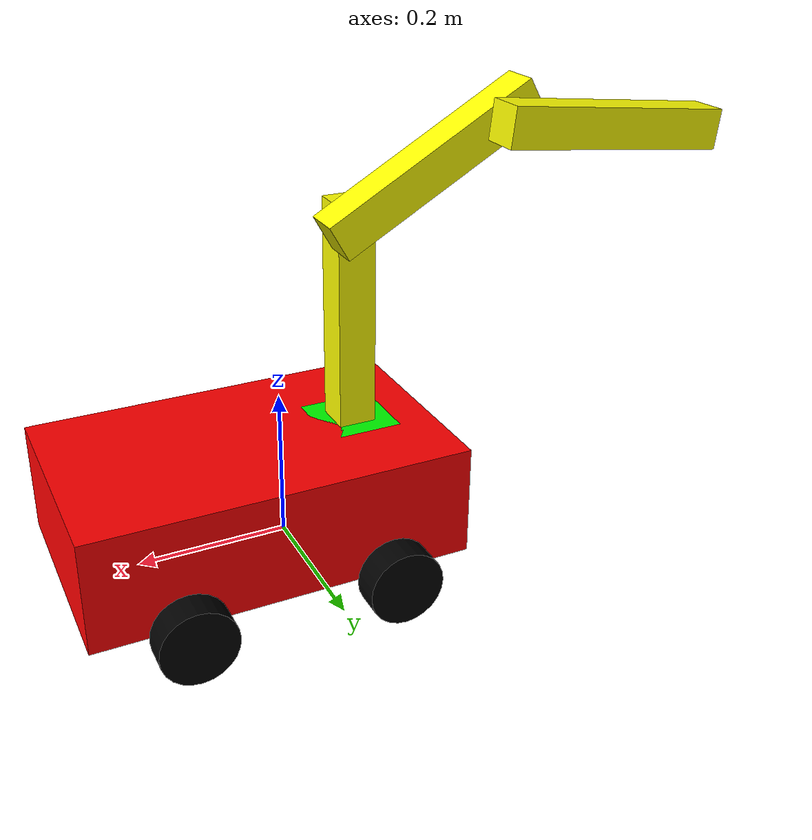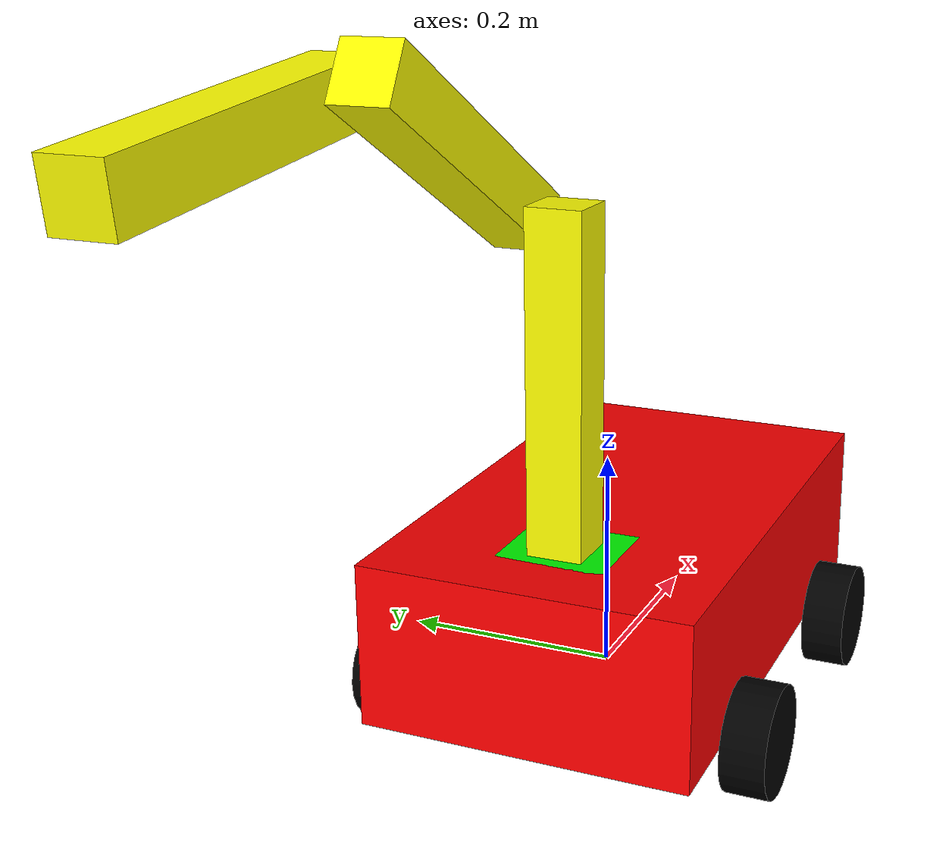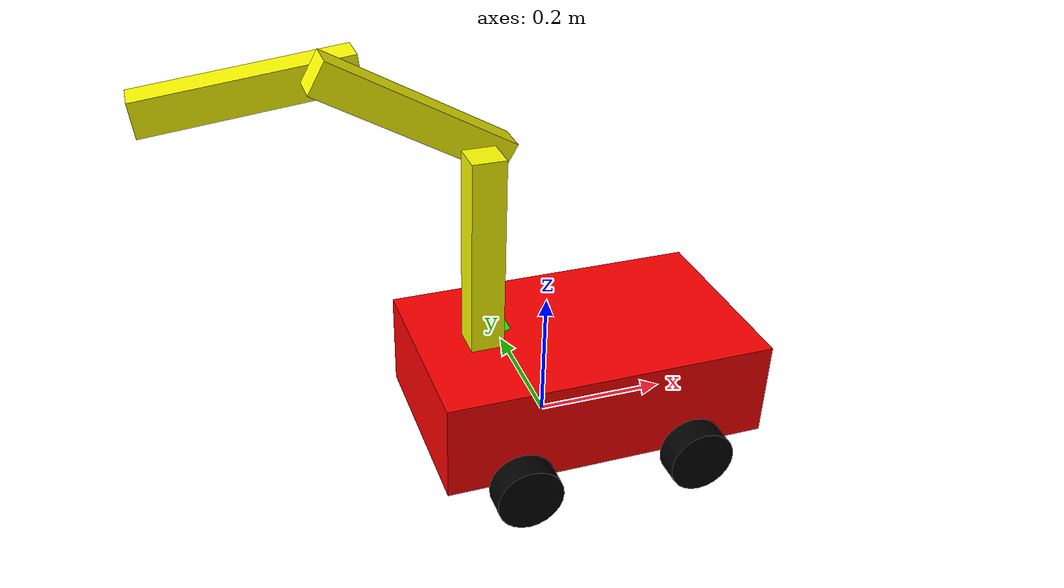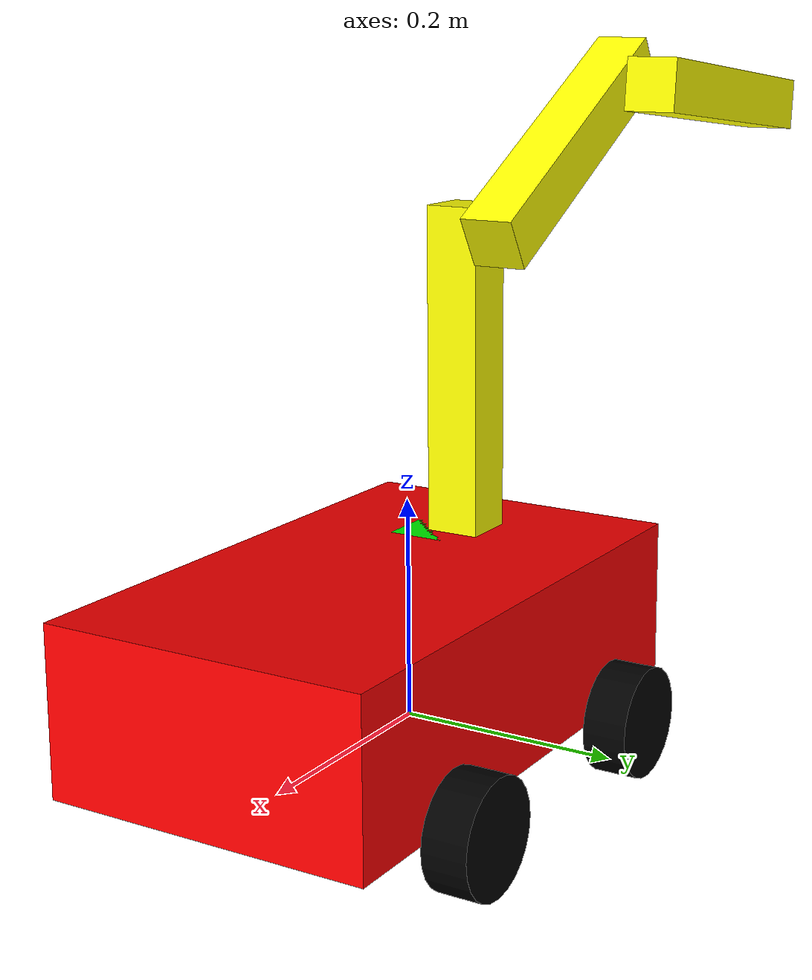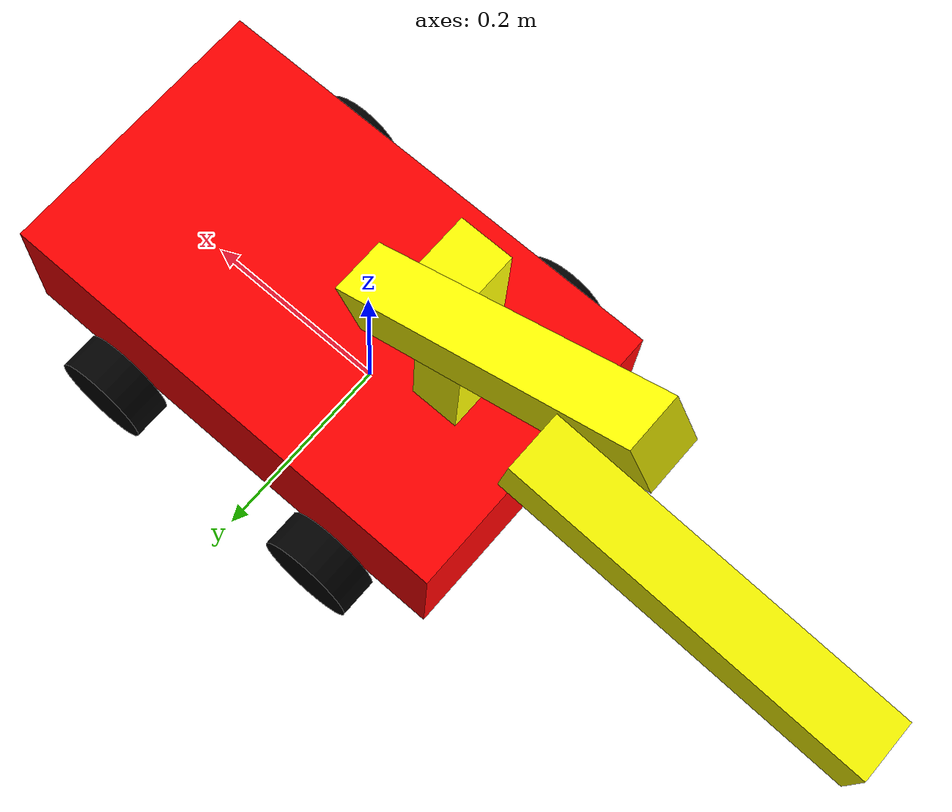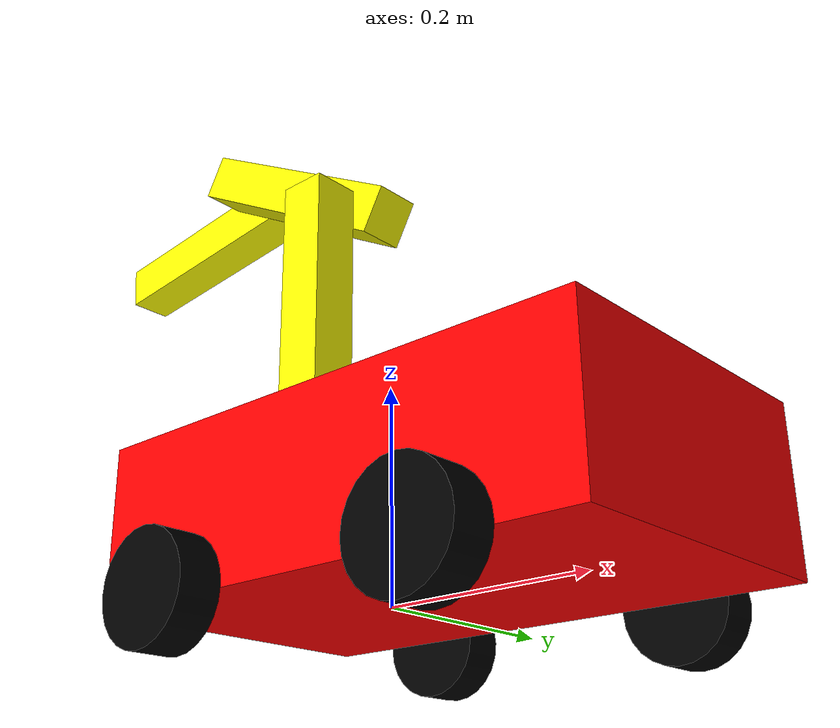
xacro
<?xml version="1.0"?>
<robot xmlns:xacro="http://www.ros.org/wiki/xacro" >

    <xacro:include filename="inertial_macros.xacro"/>

    <material name="white">
        <color rgba="1 1 1 1" />
    </material>

    <material name="orange">
        <color rgba="1 0.3 0.1 1"/>
    </material>

    <material name="blue">
        <color rgba="0.2 0.2 1 1"/>
    </material>

    <material name="black">
        <color rgba="0 0 0 1"/>
    </material>

    <material name="red">
        <color rgba="1 0 0 1"/>
    </material>

    <material name="yellow">
        <color rgba="1 1 0 1"/>
    </material>

    <material name="green">
        <color rgba="0 1 0 1"/>
    </material>

    <material name="cyan">
        <color rgba="0 1 1 1"/>
    </material>

    <!-- BASE LINK -->

    <link name="base_link">

    </link>
    <joint name="base_footprint_joint" type="fixed">
        <parent link="base_link"/>
        <child link="base_footprint"/>
        <origin xyz="0 0 0" rpy="0 0 0"/>
    </joint>

    <link name="base_footprint">
    </link>

    <!-- CHASSIS LINK -->

    <joint name="chassis_joint" type="fixed">
        <parent link="base_link"/>
        <child link="chassis"/>
        <origin xyz="-0.1 0 0"/>
    </joint>

    <link name="chassis">
        <visual>
            <origin xyz="0.15 0 0.075"/>
            <geometry>
                <box size="0.5 0.3 0.15"/>
            </geometry>
            <material name="red"/>
        </visual>
        <collision>
            <origin xyz="0.15 0 0.075"/>
            <geometry>
                <box size="0.5 0.3 0.15"/>
            </geometry>
        </collision>
        <xacro:inertial_box mass="0.5" x="0.5" y="0.3" z="0.15">
            <origin xyz="0.15 0 0.075" rpy="0 0 0"/>
        </xacro:inertial_box>
    </link>

    <gazebo reference="chassis">
        <material> Gazebo/Orange</material>
    </gazebo>

    <!-- FRONT LEFT WHEEL LINK -->

    <joint name="front_left_steering_joint" type="continuous">
        <parent link="base_link"/>
        <child link="front_left_streeing"/>
        <!--limit effort="5" lower="-2.1" upper="2.1" velocity="6.28"/-->
        <origin xyz="-0.090 0.175 0" rpy="${pi/2} 0 0" />
        <axis xyz="0 0 1"/>
    </joint>

    <link name="front_left_streeing">
        <visual>
            <geometry>
                <cylinder radius="0.05" length="0.04"/>
            </geometry>
            <material name="black"/>
        </visual>
        <collision>
            <geometry>
                <cylinder radius="0.05" length="0.04"/>
            </geometry>
        </collision>
        <xacro:inertial_cylinder mass="0.1" length="0.01" radius="0.01">
            <origin xyz="0 0 0" rpy="0 0 0"/>
        </xacro:inertial_cylinder>
    </link>

    <gazebo reference="front_left_streeing">
        <material> Gazebo/Blue</material>
    </gazebo>

    <!-- FRONT RIGHT WHEEL LINK -->

     <joint name="front_right_steering_joint" type="continuous">
        <parent link="base_link"/>
        <child link="front_right_steering"/>
        <!--limit effort="5" lower="-2.1" upper="2.1" velocity="6.28"/-->
        <origin xyz="-0.090 -0.175 0" rpy="${pi/2} 0 0" />
        <axis xyz="0 0 -1"/>
    </joint>

    <link name="front_right_steering">
        <visual>
            <geometry>
                <cylinder radius="0.05" length="0.04"/>
            </geometry>
            <material name="black"/>
        </visual>
        <collision>
            <geometry>
                <cylinder radius="0.05" length="0.04"/>
            </geometry>
        </collision>
        <xacro:inertial_cylinder mass="0.1" length="0.01" radius="0.01">
            <origin xyz="0 0 0" rpy="0 0 0"/>
        </xacro:inertial_cylinder>
    </link>

    <gazebo reference="front_right_steering">
        <material> Gazebo/Blue</material>
    </gazebo>

    <!-- ADDITIONAL WHEEL LINKS -->

    <!-- REAR RIGHT WHEEL LINK -->

    <joint name="rear_right_wheel_joint" type="continuous">
        <parent link="base_link"/>
        <child link="rear_right_wheel"/>
        <origin xyz="0.180 -0.175 0" rpy="${pi/2} 0 0"/>
        <axis xyz="0 0 -1"/>
    </joint>

    <link name="rear_right_wheel">
        <visual>
            <geometry>
                <cylinder radius="0.05" length="0.04"/>
            </geometry>
            <material name="black"/>
        </visual>
        <collision>
            <geometry>
                <cylinder radius="0.05" length="0.04"/>
            </geometry>
        </collision>
        <xacro:inertial_cylinder mass="0.1" length="0.04" radius="0.05">
            <origin xyz="0 0 0" rpy="0 0 0"/>
        </xacro:inertial_cylinder>
    </link>

     <gazebo reference="rear_right_wheel">
        <material> Gazebo/Blue</material>
    </gazebo>

    <!-- REAR LEFT WHEEL LINK -->

    <joint name="rear_left_wheel_joint" type="continuous">
        <parent link="base_link"/>
        <child link="rear_left_wheel"/>
        <origin xyz="0.180 0.175 0" rpy="${pi/2} 0 0"/>
        <axis xyz="0 0 1"/>
    </joint>

    <link name="rear_left_wheel">
        <visual>
            <geometry>
                <cylinder radius="0.05" length="0.04"/>
            </geometry>
            <material name="black"/>
        </visual>
        <collision>
            <geometry>
                <cylinder radius="0.05" length="0.04"/>
            </geometry>
        </collision>
        <xacro:inertial_cylinder mass="0.1" length="0.04" radius="0.05">
            <origin xyz="0 0 0" rpy="0 0 0"/>
        </xacro:inertial_cylinder>
    </link>

     <gazebo reference="rear_left_wheel">
        <material> Gazebo/Blue</material>

    </gazebo>

    <!-- ARM -->
	<link name="arm_base">
   		<visual>
     			<geometry>
       				<box size="0.1 .1 .1"/>
     			</geometry>
			<origin rpy="0 0 0" xyz="0 0 0.1"/>
			<material name="green">
			</material>
   		</visual>
		<collision>
			<geometry>
       				<box size="0.1 .1 .1"/>
			</geometry>
		</collision>
       		<xacro:inertial_box mass="0.05" x="0.1" y="0.1" z="0.1">
         	<origin xyz="0 0 0.1" rpy="0 0 0"/>
        	</xacro:inertial_box>
 	</link>

	<joint name="base_to_arm_base" type="fixed">
		<parent link="chassis"/>
		<child link="arm_base"/>
		<axis xyz="0 0 1"/>
		<origin xyz="0 0 0"/>
		<limit effort ="1000.0" lower="-0.32" upper="0.32" velocity="0.5"/>

	</joint>

	<link name="arm_1">
   		<visual>
     			<geometry>
       				<box size="0.05 .05 0.3"/>
     			</geometry>
			<origin rpy="0 0 0" xyz="0 0 0.15"/>
			<material name="yellow">
			</material>
   		</visual>
		<collision>
			<geometry>
       				<box size="0.05 .05 0.3"/>
			</geometry>
		</collision>
        	<xacro:inertial_box mass="0.0005" x="0.05" y="0.05" z="0.3">
            	<origin xyz="0 0 0.15" rpy="0 0 0"/>
        	</xacro:inertial_box>
 	</link>

	<joint name="arm_1_to_arm_base" type="fixed">
		<parent link="arm_base"/>
		<child link="arm_1"/>
		<axis xyz="0 0 1"/>
		<origin xyz="0 0 0.15"/>
		<limit effort ="1000.0" lower="-0.40" upper="0.40" velocity="0.5"/>
	</joint>

	<link name="arm_2">
   		<visual>
     			<geometry>
       				<box size="0.05 0.05 0.3"/>
     			</geometry>
			<origin rpy="0 0 0" xyz="0.0 0.055 0.095"/>
			<material name="yellow">
			</material>
   		</visual>
		<collision>
			<geometry>
       				<box size="0.05 .05 0.3"/>
			</geometry>
		</collision>
        	<xacro:inertial_box mass="0.0005" x="0.05" y="0.05" z="0.3">
            	<origin xyz="0.0 0.055 0.095" rpy="0 0 0"/>
        	</xacro:inertial_box>
 	</link>

	<joint name="arm_2_to_arm_1" type="revolute">
		<parent link="arm_1"/>
		<child link="arm_2"/>
		<axis xyz="0 1 0"/>
		<origin xyz="0.0 0 0.3"/>
		<limit effort ="1000.0" lower="-1.06" upper="-1.05" velocity="0.5"/>
	</joint>

	<link name="arm_3">
   		<visual>
     			<geometry>
       				<box size="0.05 0.05 0.3"/>
     			</geometry>
			<origin rpy="0 0 0" xyz="0.0 0.09 0.12"/>
			<material name="yellow">
			</material>
   		</visual>
		<collision>
			<geometry>
       				<box size="0.05 .05 0.3"/>
			</geometry>
		</collision>
        	<xacro:inertial_box mass="0.0005" x="0.05" y="0.05" z="0.3">
            	<origin xyz="0.0 0.09 0.12" rpy="0 0 0"/>
        	</xacro:inertial_box>
 	</link>

	<joint name="arm_3_to_arm_2" type="revolute">
		<parent link="arm_2"/>
		<child link="arm_3"/>
		<axis xyz="0 1 0"/>
		<origin xyz="0 0.022 0.2"/>
		<limit effort ="1000.0" lower="-0.63" upper="-0.62" velocity="0.5"/>
	</joint>

</robot>

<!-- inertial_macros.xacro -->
<robot xmlns:xacro="http://www.ros.org/wiki/xacro" >

    <!-- Specify some standard inertial calculations https://en.wikipedia.org/wiki/List_of_moments_of_inertia -->
    <!-- These make use of xacro's mathematical functionality -->

    <xacro:macro name="inertial_sphere" params="mass radius *origin">
        <inertial>
            <xacro:insert_block name="origin"/>
            <mass value="${mass}" />
            <inertia ixx="${(2/5) * mass * (radius*radius)}" ixy="0.0" ixz="0.0"
                    iyy="${(2/5) * mass * (radius*radius)}" iyz="0.0"
                    izz="${(2/5) * mass * (radius*radius)}" />
        </inertial>
    </xacro:macro>

    <xacro:macro name="inertial_box" params="mass x y z *origin">
        <inertial>
            <xacro:insert_block name="origin"/>
            <mass value="${mass}" />
            <inertia ixx="${(1/12) * mass * (y*y+z*z)}" ixy="0.0" ixz="0.0"
                    iyy="${(1/12) * mass * (x*x+z*z)}" iyz="0.0"
                    izz="${(1/12) * mass * (x*x+y*y)}" />
        </inertial>
    </xacro:macro>

    <xacro:macro name="inertial_cylinder" params="mass length radius *origin">
        <inertial>
            <xacro:insert_block name="origin"/>
            <mass value="${mass}" />
            <inertia ixx="${(1/12) * mass * (3*radius*radius + length*length)}" ixy="0.0" ixz="0.0"
                    iyy="${(1/12) * mass * (3*radius*radius + length*length)}" iyz="0.0"
                    izz="${(1/2) * mass * (radius*radius)}" />
        </inertial>
    </xacro:macro>

   <xacro:macro name="default_inertial" params="mass">
               <inertial>
                       <mass value="${mass}" />
                       <inertia ixx="1.0" ixy="0.0" ixz="0.0"
                                iyy="1.0" iyz="0.0"
                                izz="1.0" />
               </inertial>
	</xacro:macro>
</robot>
